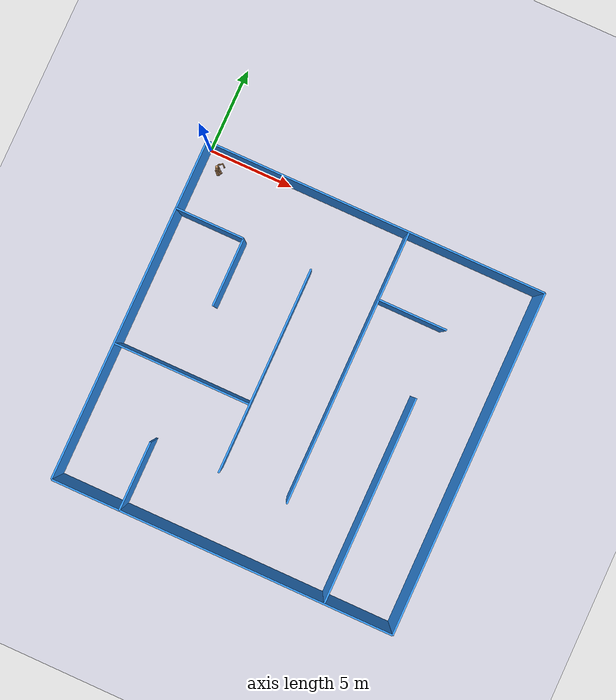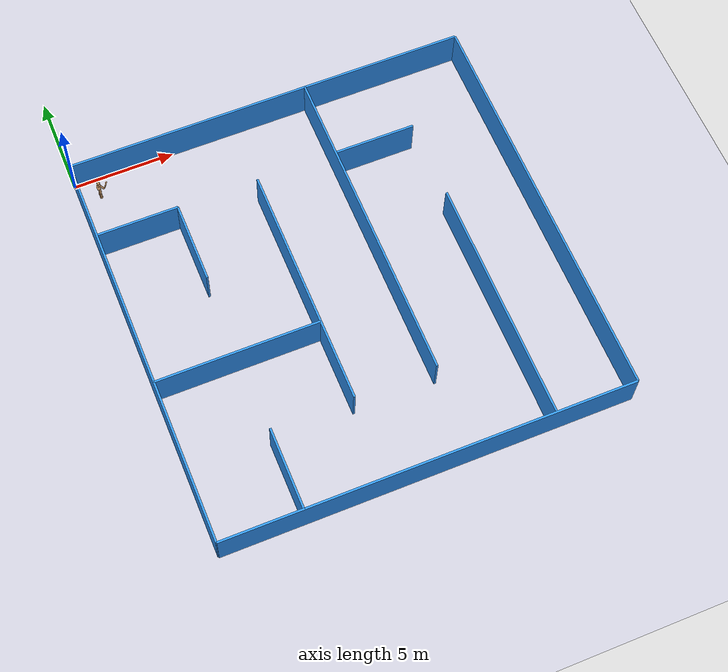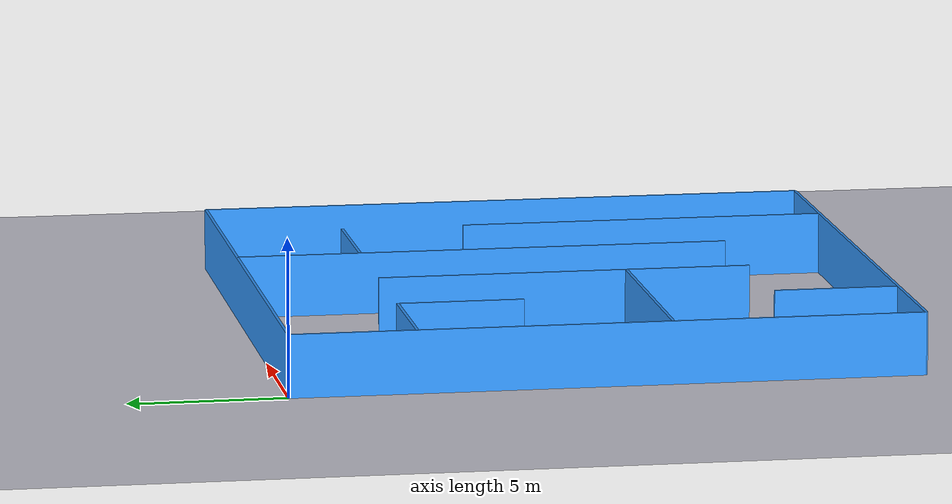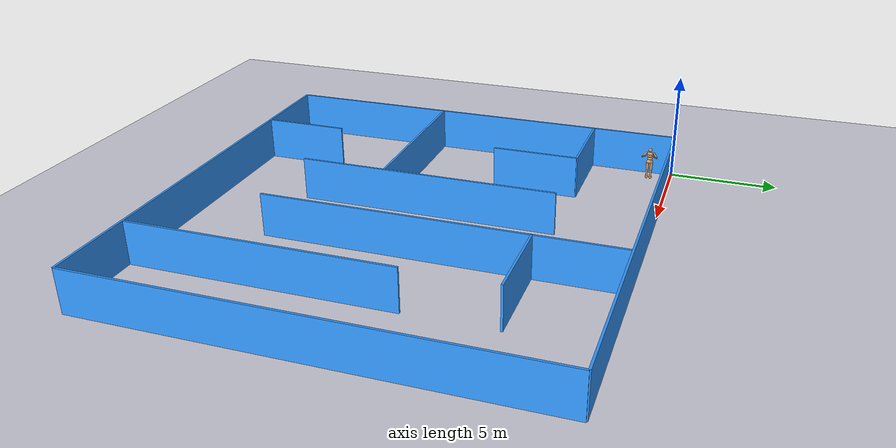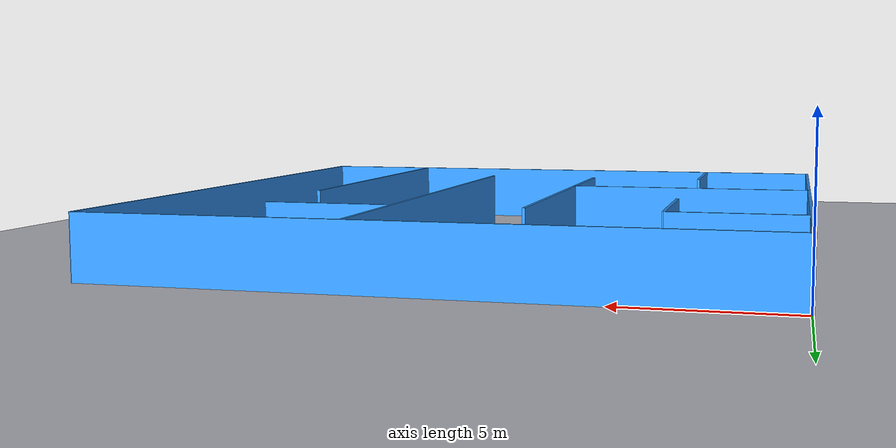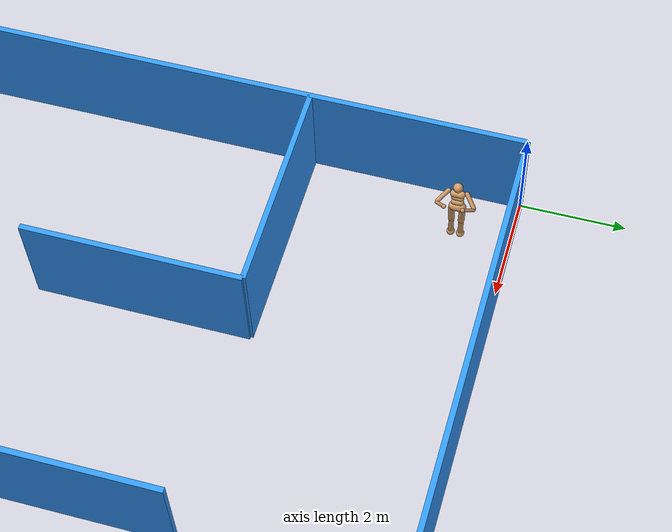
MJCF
<mujoco model="plane">
   <compiler angle="degree" inertiafromgeom="true" meshdir="meshes/" />
   <size nconmax="100" njmax="500" nstack="-1" />

   <option timestep="0.002">
		<flag warmstart="enable" />
	</option>

	<visual>
		<quality shadowsize="4096" />
	</visual>

   <default>
		<geom material="geom" type="box"/>
   </default>

   <asset>
		<texture builtin="gradient" height="100" rgb1="1 1 1" rgb2="0 0 0" type="skybox" width="100" />
		<texture builtin="checker" height="500" mark="edge" markrgb=".1 .1 .1" name="groundplane" rgb1=".7 .7 .75" rgb2=".9 .9 .95" type="2d" width="500" />

		<material name="MatPlastic" reflectance="0.5" rgba=".4 .41 .4 1" shininess=".6" specular=".8" />
		<material name="MatBlue" reflectance="0.1" rgba=".2 .6 1 1" shininess=".6" specular=".8" />
		<material name="MatFrame" reflectance="0.5" rgba=".21 .2 .2 1" shininess=".1" specular="1.2" />
		<material name="MatGnd" reflectance="0.1" shininess=".01" specular=".5" texrepeat="7.5 7.5" texture="groundplane" />
		<texture type="skybox" builtin="gradient" width="100" height="100" rgb1=".4 .6 .8"
            rgb2="0 0 0"/>
        <texture name="texgeom" type="cube" builtin="flat" mark="cross" width="127" height="1278"
            rgb1="0.8 0.6 0.4" rgb2="0.8 0.6 0.4" markrgb="1 1 1" random="0.01"/>
        <texture name="texplane" type="2d" builtin="checker" rgb1=".2 .3 .4" rgb2=".1 0.15 0.2"
            width="100" height="100"/>

        <material name='MatPlane' reflectance='0.5' texture="texplane" texrepeat="1 1" texuniform="true"/>
        <material name='geom' texture="texgeom" texuniform="true"/>
   </asset>

    <worldbody>
		<include file="humo.xml"/>
		<geom material="MatGnd" name="ground" pos="0 0 0" size="30 30 30" type="plane" />
    <geom pos="10.0 0 1.0" rgba="0.2 0.6 1 1" size="10.0 0.05 1.0" type="box" material="MatBlue"/><geom pos="10.0 -20.0 1.0" rgba="0.2 0.6 1 1" size="10.0 0.05 1.0" type="box" material="MatBlue"/><geom euler="0 0 90" pos="0 -10.0 1.0" rgba="0.2 0.6 1 1" size="10.0 0.05 1.0" type="box" material="MatBlue"/><geom euler="0 0 90" pos="20.0 -10.0 1.0" rgba="0.2 0.6 1 1" size="10.0 0.05 1.0" type="box" material="MatBlue"/><geom pos="2.0 -4.0 1.0" rgba="0.2 0.6 1 1" size="2.0 0.05 1.0" type="box" material="MatBlue"/><geom euler="0 0 90" pos="4.0 -6.0 1.0" rgba="0.2 0.6 1 1" size="2.0 0.05 1.0" type="box" material="MatBlue"/><geom pos="4.0 -12.0 1.0" rgba="0.2 0.6 1 1" size="4.0 0.05 1.0" type="box" material="MatBlue"/><geom euler="0 0 90" pos="4.0 -18.0 1.0" rgba="0.2 0.6 1 1" size="2.0 0.05 1.0" type="box" material="MatBlue"/><geom euler="0 0 90" pos="8.0 -10.0 1.0" rgba="0.2 0.6 1 1" size="6.0 0.05 1.0" type="box" material="MatBlue"/><geom euler="0 0 90" pos="12.0 -8.0 1.0" rgba="0.2 0.6 1 1" size="8.0 0.05 1.0" type="box" material="MatBlue"/><geom pos="14.0 -4.0 1.0" rgba="0.2 0.6 1 1" size="2.0 0.05 1.0" type="box" material="MatBlue"/><geom euler="0 0 90" pos="16.0 -14.0 1.0" rgba="0.2 0.6 1 1" size="6.0 0.05 1.0" type="box" material="MatBlue"/>
	</worldbody>

       <tendon>
        <fixed name="left_hipknee">
            <joint coef="-1" joint="left_hip_y"/>
            <joint coef="1" joint="left_knee"/>
        </fixed>
        <fixed name="right_hipknee">
            <joint coef="-1" joint="right_hip_y"/>
            <joint coef="1" joint="right_knee"/>
        </fixed>
    </tendon>
    <actuator><!-- this section is not supported, same constants in code -->
        <motor gear="100" joint="abdomen_y" name="abdomen_y"/>
        <motor gear="100" joint="abdomen_z" name="abdomen_z"/>
        <motor gear="100" joint="abdomen_x" name="abdomen_x"/>
        <motor gear="100" joint="right_hip_x" name="right_hip_x"/>
        <motor gear="100" joint="right_hip_z" name="right_hip_z"/>
        <motor gear="300" joint="right_hip_y" name="right_hip_y"/>
        <motor gear="200" joint="right_knee" name="right_knee"/>
        <motor gear="100" joint="left_hip_x" name="left_hip_x"/>
        <motor gear="100" joint="left_hip_z" name="left_hip_z"/>
        <motor gear="300" joint="left_hip_y" name="left_hip_y"/>
        <motor gear="200" joint="left_knee" name="left_knee"/>
        <motor gear="25" joint="right_shoulder1" name="right_shoulder1"/>
        <motor gear="25" joint="right_shoulder2" name="right_shoulder2"/>
        <motor gear="25" joint="right_elbow" name="right_elbow"/>
        <motor gear="25" joint="left_shoulder1" name="left_shoulder1"/>
        <motor gear="25" joint="left_shoulder2" name="left_shoulder2"/>
        <motor gear="25" joint="left_elbow" name="left_elbow"/>
    </actuator>

</mujoco>

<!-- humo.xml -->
<mujoco>
        <body name="torso" pos="1 -1 1.4">
            <joint armature="0" damping="0" limited="false" name="root" pos="0 0 0" stiffness="0" type="free"/>
            <geom fromto="0 -.07 0 0 .07 0" name="torso1" size="0.07" type="capsule"/>
            <geom name="head" pos="0 0 .19" size=".09" type="sphere" user="258"/>
            <geom fromto="-.01 -.06 -.12 -.01 .06 -.12" name="uwaist" size="0.06" type="capsule"/>
            <body name="lwaist" pos="-.01 0 -0.260" quat="1.000 0 -0.002 0">
                <geom fromto="0 -.06 0 0 .06 0" name="lwaist" size="0.06" type="capsule"/>
                <joint armature="0.02" axis="0 0 1" damping="5" name="abdomen_z" pos="0 0 0.065" range="-45 45" stiffness="20" type="hinge"/>
                <joint armature="0.02" axis="0 1 0" damping="5" name="abdomen_y" pos="0 0 0.065" range="-75 30" stiffness="10" type="hinge"/>
                <body name="pelvis" pos="0 0 -0.165" quat="1.000 0 -0.002 0">
                    <joint armature="0.02" axis="1 0 0" damping="5" name="abdomen_x" pos="0 0 0.1" range="-35 35" stiffness="10" type="hinge"/>
                    <geom fromto="-.02 -.07 0 -.02 .07 0" name="butt" size="0.09" type="capsule"/>
                    <body name="right_thigh" pos="0 -0.1 -0.04">
                        <joint armature="0.01" axis="1 0 0" damping="5" name="right_hip_x" pos="0 0 0" range="-25 5" stiffness="10" type="hinge"/>
                        <joint armature="0.01" axis="0 0 1" damping="5" name="right_hip_z" pos="0 0 0" range="-60 35" stiffness="10" type="hinge"/>
                        <joint armature="0.01" axis="0 1 0" damping="5" name="right_hip_y" pos="0 0 0" range="-120 20" stiffness="20" type="hinge"/>
                        <geom fromto="0 0 0 0 0.01 -.34" name="right_thigh1" size="0.06" type="capsule"/>
                        <body name="right_shin" pos="0 0.01 -0.403">
                            <joint armature="0.0060" axis="0 -1 0" name="right_knee" pos="0 0 .02" range="-160 -2" stiffness="1" type="hinge"/>
                            <geom fromto="0 0 0 0 0 -.3" name="right_shin1" size="0.049" type="capsule"/>
                            <body name="right_foot" pos="0 0 -0.45">
                                <geom name="right_foot" pos="0 0 0.1" size="0.075" type="sphere" user="0"/>
                            </body>
                        </body>
                    </body>
                    <body name="left_thigh" pos="0 0.1 -0.04">
                        <joint armature="0.01" axis="-1 0 0" damping="5" name="left_hip_x" pos="0 0 0" range="-25 5" stiffness="10" type="hinge"/>
                        <joint armature="0.01" axis="0 0 -1" damping="5" name="left_hip_z" pos="0 0 0" range="-60 35" stiffness="10" type="hinge"/>
                        <joint armature="0.01" axis="0 1 0" damping="5" name="left_hip_y" pos="0 0 0" range="-120 20" stiffness="20" type="hinge"/>
                        <geom fromto="0 0 0 0 -0.01 -.34" name="left_thigh1" size="0.06" type="capsule"/>
                        <body name="left_shin" pos="0 -0.01 -0.403">
                            <joint armature="0.0060" axis="0 -1 0" name="left_knee" pos="0 0 .02" range="-160 -2" stiffness="1" type="hinge"/>
                            <geom fromto="0 0 0 0 0 -.3" name="left_shin1" size="0.049" type="capsule"/>
                            <body name="left_foot" pos="0 0 -0.45">
                                <geom name="left_foot" type="sphere" size="0.075" pos="0 0 0.1" user="0" />
                            </body>
                        </body>
                    </body>
                </body>
            </body>
            <body name="right_upper_arm" pos="0 -0.17 0.06">
                <joint armature="0.0068" axis="2 1 1" name="right_shoulder1" pos="0 0 0" range="-85 60" stiffness="1" type="hinge"/>
                <joint armature="0.0051" axis="0 -1 1" name="right_shoulder2" pos="0 0 0" range="-85 60" stiffness="1" type="hinge"/>
                <geom fromto="0 0 0 .16 -.16 -.16" name="right_uarm1" size="0.04 0.16" type="capsule"/>
                <body name="right_lower_arm" pos=".18 -.18 -.18">
                    <joint armature="0.0028" axis="0 -1 1" name="right_elbow" pos="0 0 0" range="-90 50" stiffness="0" type="hinge"/>
                    <geom fromto="0.01 0.01 0.01 .17 .17 .17" name="right_larm" size="0.031" type="capsule"/>
                    <geom name="right_hand" pos=".18 .18 .18" size="0.04" type="sphere"/>
                </body>
            </body>
            <body name="left_upper_arm" pos="0 0.17 0.06">
                <joint armature="0.0068" axis="2 -1 1" name="left_shoulder1" pos="0 0 0" range="-60 85" stiffness="1" type="hinge"/>
                <joint armature="0.0051" axis="0 1 1" name="left_shoulder2" pos="0 0 0" range="-60 85" stiffness="1" type="hinge"/>
                <geom fromto="0 0 0 .16 .16 -.16" name="left_uarm1" size="0.04 0.16" type="capsule"/>
                <body name="left_lower_arm" pos=".18 .18 -.18">
                    <joint armature="0.0028" axis="0 -1 -1" name="left_elbow" pos="0 0 0" range="-90 50" stiffness="0" type="hinge"/>
                    <geom fromto="0.01 -0.01 0.01 .17 -.17 .17" name="left_larm" size="0.031" type="capsule"/>
                    <geom name="left_hand" pos=".18 -.18 .18" size="0.04" type="sphere"/>
                </body>
            </body>
        </body>
</mujoco>
